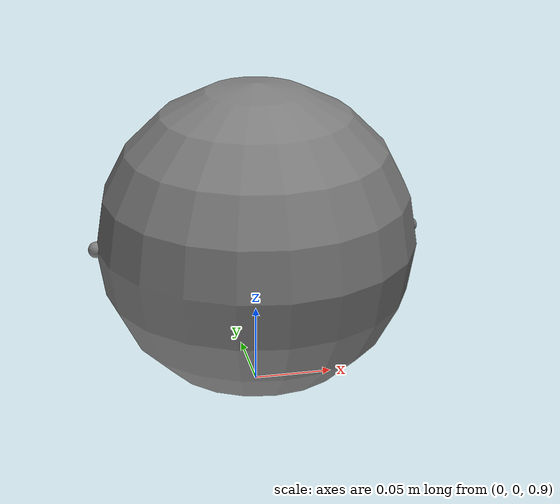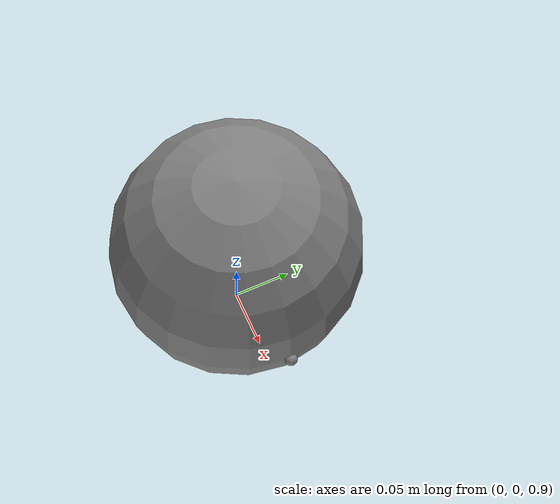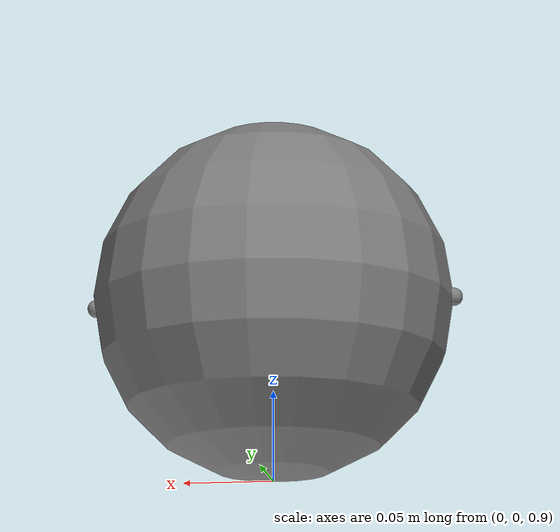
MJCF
<mujoco model="same_body">
            <worldbody>
                <body name="b1" pos="0 0 1">
                    <joint name="j1" type="hinge" axis="0 1 0"/>
                    <geom type="sphere" size="0.1" mass="1.0"/>
                    <site name="s1" pos="0.1 0 0"/>
                    <site name="s2" pos="-0.1 0 0"/>
                </body>
            </worldbody>
            <actuator>
                <general name="a1" site="s1" refsite="s2" gear="1 0 0 0 0 0"
                         ctrlrange="-100 100"/>
            </actuator>
        </mujoco>
